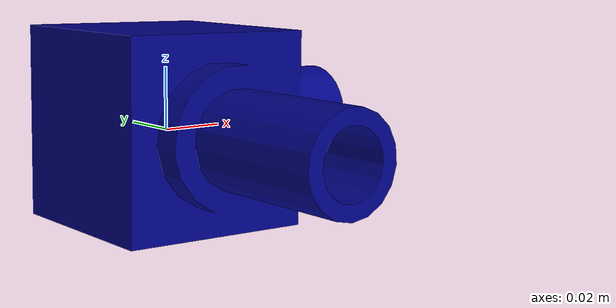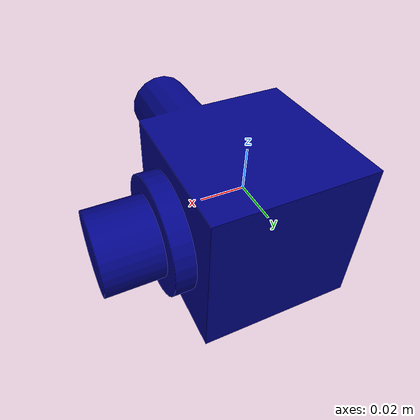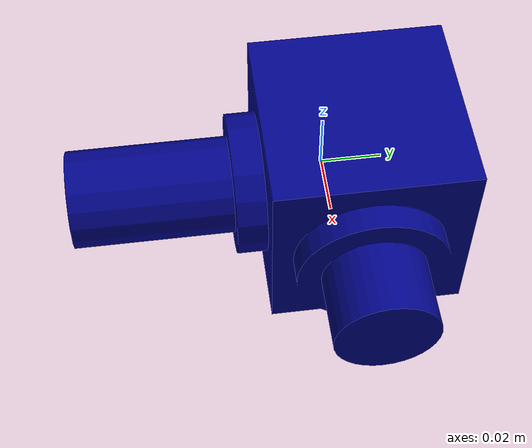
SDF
<?xml version="1.0" ?>
<sdf version="1.6">
  <model name="assembly_regulator_blue_ariac">
    <static>false</static>
    <link name="link">
      <inertial>
        <pose>0 0 0.01 0 0 0</pose>
        <mass>0.5</mass>
        <inertia>
          <ixx>0.0009</ixx>
          <ixy>0</ixy>
          <ixz>0</ixz>
          <iyy>0.0009</iyy>
          <iyz>0</iyz>
          <izz>0.0012</izz>
        </inertia>
      </inertial>
      <collision name='collision'>
        <pose frame=''>0 0 0 0 0 0</pose>
        <geometry>
            <mesh>
            <uri>model://assembly_regulator_blue_ariac/meshes/regulator_collision.dae</uri>
            <scale>0.95 0.95 0.95</scale>
            </mesh>
          </geometry>
        <surface>
          <contact>
            <ode>
              <max_vel>0.1</max_vel>
              <min_depth>0.001</min_depth>
            </ode>
          </contact>
        </surface>
      </collision>
      <visual name="visual">
         <geometry>
           <mesh>
             <uri>model://assembly_regulator_blue_ariac/meshes/assembly_regulator_part_blue.dae</uri>
             <scale>0.95 0.95 0.95</scale>
           </mesh>
         </geometry>
       </visual>
    </link>
  </model>
</sdf>
